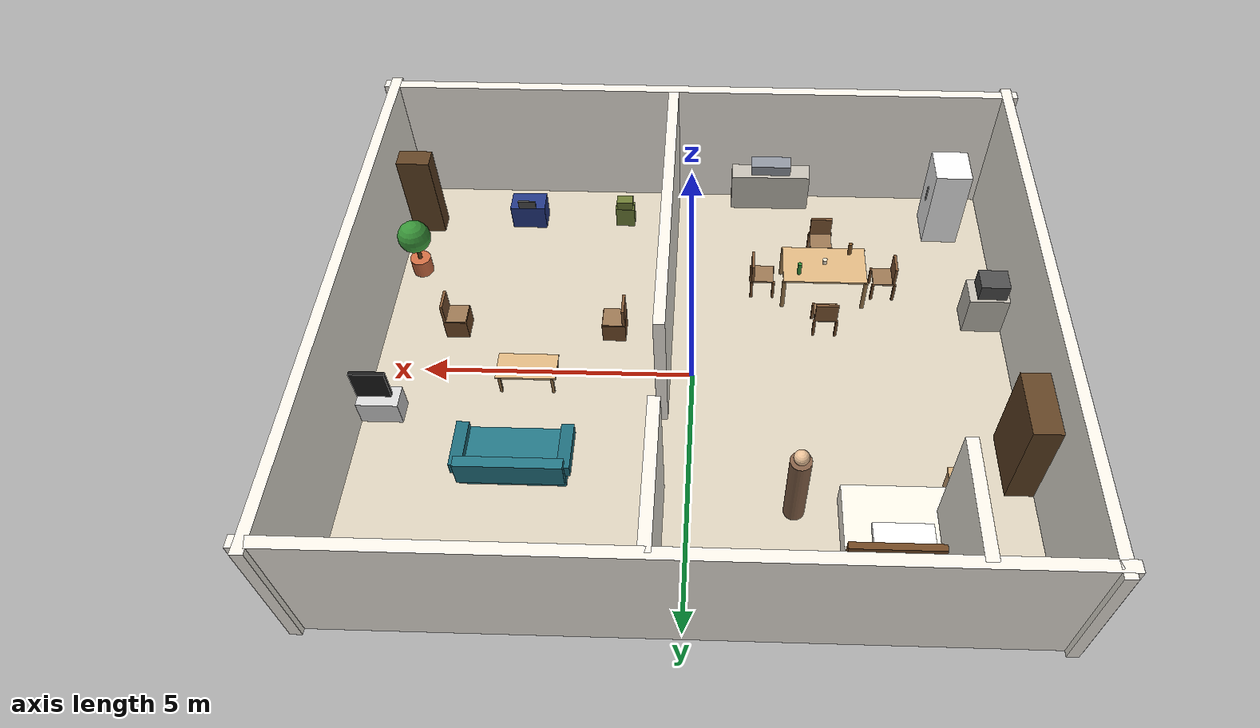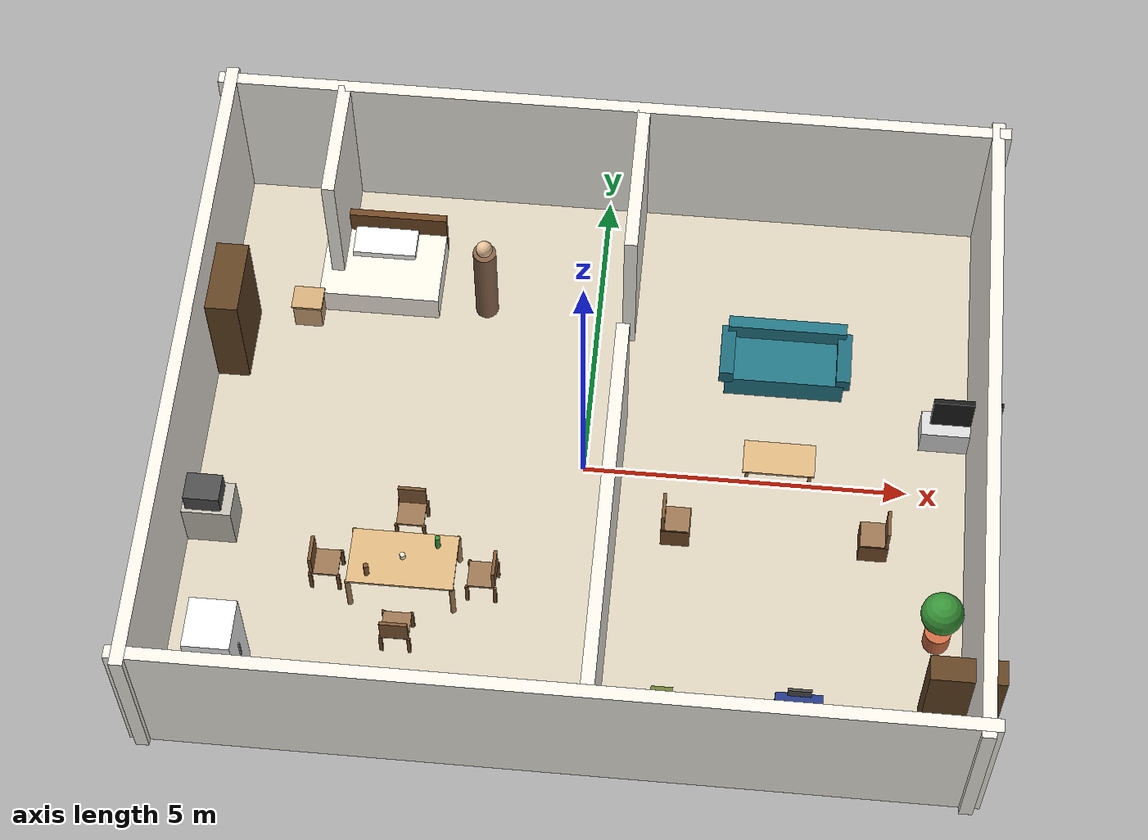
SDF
<?xml version="1.0" ?>
<sdf version="1.6">
<world name="default">

  <plugin filename="libignition-gazebo-physics-system.so"       name="ignition::gazebo::systems::Physics"/>
  <plugin filename="libignition-gazebo-user-commands-system.so" name="ignition::gazebo::systems::UserCommands"/>
  <plugin filename="libignition-gazebo-scene-broadcaster-system.so" name="ignition::gazebo::systems::SceneBroadcaster"/>
  <plugin filename="libignition-gazebo-imu-system.so"           name="ignition::gazebo::systems::Imu"/>
  <plugin filename="libignition-gazebo-sensors-system.so"       name="ignition::gazebo::systems::Sensors">
    <render_engine>ogre2</render_engine>
  </plugin>

  <physics name="default_physics" default="true" type="ode">
    <max_step_size>0.001</max_step_size>
    <real_time_factor>1</real_time_factor>
    <real_time_update_rate>500</real_time_update_rate>
    <gravity>0 0 -9.81</gravity>
  </physics>

  <light name="sun" type="directional">
    <cast_shadows>false</cast_shadows>
    <pose>0 0 12 0 -0.4 0.6</pose>
    <diffuse>1.0 0.98 0.94 1</diffuse>
    <specular>0.3 0.3 0.3 1</specular>
    <direction>-0.4 0.2 -0.9</direction>
  </light>
  <light name="fill" type="directional">
    <cast_shadows>false</cast_shadows>
    <pose>0 0 8 0 0 0</pose>
    <diffuse>0.50 0.52 0.56 1</diffuse>
    <specular>0.02 0.02 0.02 1</specular>
    <direction>0 0 -1</direction>
  </light>

  <!-- ══ FLOOR ══ -->
  <model name="floor"><static>true</static><pose>0 0 0.01 0 0 0</pose>
    <link name="l"><collision name="c"><geometry><box><size>12.0 10.0 0.02</size></box></geometry></collision>
      <visual name="v"><geometry><box><size>12.0 10.0 0.02</size></box></geometry>
        <material><ambient>0.78 0.74 0.66 1</ambient><diffuse>0.85 0.81 0.73 1</diffuse></material></visual></link></model>

  <!-- ══ OUTER WALLS ══ -->
  <model name="wall_N"><static>true</static><pose>0 5.0 1.35 0 0 0</pose>
    <link name="l"><collision name="c"><geometry><box><size>12.4 0.20 2.70</size></box></geometry></collision>
      <visual name="v"><geometry><box><size>12.4 0.20 2.70</size></box></geometry>
        <material><ambient>0.92 0.90 0.86 1</ambient><diffuse>0.96 0.94 0.90 1</diffuse></material></visual></link></model>
  <model name="wall_S"><static>true</static><pose>0 -5.0 1.35 0 0 0</pose>
    <link name="l"><collision name="c"><geometry><box><size>12.4 0.20 2.70</size></box></geometry></collision>
      <visual name="v"><geometry><box><size>12.4 0.20 2.70</size></box></geometry>
        <material><ambient>0.92 0.90 0.86 1</ambient><diffuse>0.96 0.94 0.90 1</diffuse></material></visual></link></model>
  <model name="wall_E"><static>true</static><pose>6.0 0 1.35 0 0 0</pose>
    <link name="l"><collision name="c"><geometry><box><size>0.20 10.4 2.70</size></box></geometry></collision>
      <visual name="v"><geometry><box><size>0.20 10.4 2.70</size></box></geometry>
        <material><ambient>0.92 0.90 0.86 1</ambient><diffuse>0.96 0.94 0.90 1</diffuse></material></visual></link></model>
  <model name="wall_W"><static>true</static><pose>-6.0 0 1.35 0 0 0</pose>
    <link name="l"><collision name="c"><geometry><box><size>0.20 10.4 2.70</size></box></geometry></collision>
      <visual name="v"><geometry><box><size>0.20 10.4 2.70</size></box></geometry>
        <material><ambient>0.92 0.90 0.86 1</ambient><diffuse>0.96 0.94 0.90 1</diffuse></material></visual></link></model>

  <!-- ══ INTERNAL DIVIDING WALL x=0.5  (doorway y=1.0–2.4) ══ -->
  <model name="div_N"><static>true</static><pose>0.5 3.70 1.35 0 0 0</pose>
    <link name="l"><collision name="c"><geometry><box><size>0.20 2.60 2.70</size></box></geometry></collision>
      <visual name="v"><geometry><box><size>0.20 2.60 2.70</size></box></geometry>
        <material><ambient>0.92 0.90 0.86 1</ambient><diffuse>0.96 0.94 0.90 1</diffuse></material></visual></link></model>
  <model name="div_S"><static>true</static><pose>0.5 -2.0 1.35 0 0 0</pose>
    <link name="l"><collision name="c"><geometry><box><size>0.20 6.00 2.70</size></box></geometry></collision>
      <visual name="v"><geometry><box><size>0.20 6.00 2.70</size></box></geometry>
        <material><ambient>0.92 0.90 0.86 1</ambient><diffuse>0.96 0.94 0.90 1</diffuse></material></visual></link></model>

  <model name="closet_wall"><static>true</static><pose>-4.2 4.0 1.35 0 0 0</pose>
    <link name="l"><collision name="c"><geometry><box><size>0.20 2.00 2.70</size></box></geometry></collision>
      <visual name="v"><geometry><box><size>0.20 2.00 2.70</size></box></geometry>
        <material><ambient>0.92 0.90 0.86 1</ambient><diffuse>0.96 0.94 0.90 1</diffuse></material></visual></link></model>

  <!-- ══════════════════════════════════════════════════════════════
       BEDROOM  (left zone, y > 0)
       Classes: bed, person
  ══════════════════════════════════════════════════════════════════ -->

  <!-- BED — class: bed -->
  <model name="bed_mat"><static>true</static><pose>-3.5 3.2 0.25 0 0 0</pose>
    <link name="l"><collision name="c"><geometry><box><size>1.90 1.30 0.50</size></box></geometry></collision>
      <visual name="v"><geometry><box><size>1.90 1.30 0.50</size></box></geometry>
        <material><ambient>0.94 0.91 0.86 1</ambient><diffuse>0.98 0.95 0.90 1</diffuse></material></visual></link></model>
  <model name="bed_head"><static>true</static><pose>-3.5 3.87 0.45 0 0 0</pose>
    <link name="l"><collision name="c"><geometry><box><size>1.90 0.12 0.90</size></box></geometry></collision>
      <visual name="v"><geometry><box><size>1.90 0.12 0.90</size></box></geometry>
        <material><ambient>0.35 0.22 0.10 1</ambient><diffuse>0.44 0.28 0.14 1</diffuse></material></visual></link></model>
  <model name="bed_pillow"><static>true</static><pose>-3.5 3.55 0.545 0 0 0</pose>
    <link name="l"><collision name="c"><geometry><box><size>1.00 0.50 0.14</size></box></geometry></collision>
      <visual name="v"><geometry><box><size>1.00 0.50 0.14</size></box></geometry>
        <material><ambient>0.97 0.96 0.94 1</ambient><diffuse>1.0 0.99 0.97 1</diffuse></material></visual></link></model>

  <!-- WARDROBE — flush west wall — void behind creates dead zone -->
  <model name="wardrobe"><static>true</static><pose>-5.70 1.8 0.96 0 0 0</pose>
    <link name="l"><collision name="c"><geometry><box><size>0.60 1.20 1.92</size></box></geometry></collision>
      <visual name="v"><geometry><box><size>0.60 1.20 1.92</size></box></geometry>
        <material><ambient>0.30 0.20 0.10 1</ambient><diffuse>0.38 0.26 0.14 1</diffuse></material></visual></link></model>

  <!-- PERSON — class: person -->
  <model name="person_body"><static>true</static><pose>-1.8 2.8 0.80 0 0 0</pose>
    <link name="l"><collision name="c"><geometry><cylinder><radius>0.18</radius><length>1.60</length></cylinder></geometry></collision>
      <visual name="v"><geometry><cylinder><radius>0.18</radius><length>1.60</length></cylinder></geometry>
        <material><ambient>0.42 0.30 0.22 1</ambient><diffuse>0.52 0.38 0.28 1</diffuse></material></visual></link></model>
  <model name="person_head"><static>true</static><pose>-1.8 2.8 1.70 0 0 0</pose>
    <link name="l"><collision name="c"><geometry><sphere><radius>0.13</radius></sphere></geometry></collision>
      <visual name="v"><geometry><sphere><radius>0.13</radius></sphere></geometry>
        <material><ambient>0.86 0.68 0.52 1</ambient><diffuse>0.92 0.76 0.60 1</diffuse></material></visual></link></model>

  <!-- NIGHTSTAND -->
  <model name="nstand_body"><static>true</static><pose>-4.6 2.4 0.26 0 0 0</pose>
    <link name="l"><collision name="c"><geometry><box><size>0.44 0.36 0.52</size></box></geometry></collision>
      <visual name="v"><geometry><box><size>0.44 0.36 0.52</size></box></geometry>
        <material><ambient>0.72 0.56 0.38 1</ambient><diffuse>0.80 0.64 0.46 1</diffuse></material></visual></link></model>
  <model name="nstand_top"><static>true</static><pose>-4.6 2.4 0.54 0 0 0</pose>
    <link name="l"><collision name="c"><geometry><box><size>0.48 0.40 0.04</size></box></geometry></collision>
      <visual name="v"><geometry><box><size>0.48 0.40 0.04</size></box></geometry>
        <material><ambient>0.75 0.60 0.40 1</ambient><diffuse>0.82 0.67 0.47 1</diffuse></material></visual></link></model>

  <!-- DINING TABLE — class: dining table -->
  <model name="dtable_top"><static>true</static><pose>-2.5 -2.2 0.73 0 0 0</pose>
    <link name="l"><collision name="c"><geometry><box><size>1.60 0.90 0.04</size></box></geometry></collision>
      <visual name="v"><geometry><box><size>1.60 0.90 0.04</size></box></geometry>
        <material><ambient>0.78 0.63 0.42 1</ambient><diffuse>0.86 0.71 0.50 1</diffuse></material></visual></link></model>
  <model name="dtable_leg_ne"><static>true</static><pose>-1.72 -1.77 0.365 0 0 0</pose>
    <link name="l"><collision name="c"><geometry><cylinder><radius>0.04</radius><length>0.73</length></cylinder></geometry></collision>
      <visual name="v"><geometry><cylinder><radius>0.04</radius><length>0.73</length></cylinder></geometry>
        <material><ambient>0.55 0.42 0.26 1</ambient><diffuse>0.62 0.48 0.30 1</diffuse></material></visual></link></model>
  <model name="dtable_leg_nw"><static>true</static><pose>-3.28 -1.77 0.365 0 0 0</pose>
    <link name="l"><collision name="c"><geometry><cylinder><radius>0.04</radius><length>0.73</length></cylinder></geometry></collision>
      <visual name="v"><geometry><cylinder><radius>0.04</radius><length>0.73</length></cylinder></geometry>
        <material><ambient>0.55 0.42 0.26 1</ambient><diffuse>0.62 0.48 0.30 1</diffuse></material></visual></link></model>
  <model name="dtable_leg_se"><static>true</static><pose>-1.72 -2.63 0.365 0 0 0</pose>
    <link name="l"><collision name="c"><geometry><cylinder><radius>0.04</radius><length>0.73</length></cylinder></geometry></collision>
      <visual name="v"><geometry><cylinder><radius>0.04</radius><length>0.73</length></cylinder></geometry>
        <material><ambient>0.55 0.42 0.26 1</ambient><diffuse>0.62 0.48 0.30 1</diffuse></material></visual></link></model>
  <model name="dtable_leg_sw"><static>true</static><pose>-3.28 -2.63 0.365 0 0 0</pose>
    <link name="l"><collision name="c"><geometry><cylinder><radius>0.04</radius><length>0.73</length></cylinder></geometry></collision>
      <visual name="v"><geometry><cylinder><radius>0.04</radius><length>0.73</length></cylinder></geometry>
        <material><ambient>0.55 0.42 0.26 1</ambient><diffuse>0.62 0.48 0.30 1</diffuse></material></visual></link></model>

  <!-- CHAIR N (north of table, faces south) — class: chair -->
  <model name="chair_n_seat"><static>true</static><pose>-2.5 -1.25 0.44 0 0 0</pose>
    <link name="l"><collision name="c"><geometry><box><size>0.42 0.42 0.04</size></box></geometry></collision>
      <visual name="v"><geometry><box><size>0.42 0.42 0.04</size></box></geometry>
        <material><ambient>0.50 0.38 0.26 1</ambient><diffuse>0.60 0.46 0.32 1</diffuse></material></visual></link></model>
  <model name="chair_n_back"><static>true</static><pose>-2.5 -1.06 0.65 0 0 0</pose>
    <link name="l"><collision name="c"><geometry><box><size>0.42 0.05 0.42</size></box></geometry></collision>
      <visual name="v"><geometry><box><size>0.42 0.05 0.42</size></box></geometry>
        <material><ambient>0.40 0.26 0.14 1</ambient><diffuse>0.50 0.34 0.20 1</diffuse></material></visual></link></model>
  <model name="chair_n_leg_ne"><static>true</static><pose>-2.29 -1.04 0.22 0 0 0</pose>
    <link name="l"><collision name="c"><geometry><box><size>0.05 0.05 0.44</size></box></geometry></collision>
      <visual name="v"><geometry><box><size>0.05 0.05 0.44</size></box></geometry>
        <material><ambient>0.38 0.24 0.12 1</ambient><diffuse>0.46 0.30 0.16 1</diffuse></material></visual></link></model>
  <model name="chair_n_leg_nw"><static>true</static><pose>-2.71 -1.04 0.22 0 0 0</pose>
    <link name="l"><collision name="c"><geometry><box><size>0.05 0.05 0.44</size></box></geometry></collision>
      <visual name="v"><geometry><box><size>0.05 0.05 0.44</size></box></geometry>
        <material><ambient>0.38 0.24 0.12 1</ambient><diffuse>0.46 0.30 0.16 1</diffuse></material></visual></link></model>
  <model name="chair_n_leg_se"><static>true</static><pose>-2.29 -1.46 0.22 0 0 0</pose>
    <link name="l"><collision name="c"><geometry><box><size>0.05 0.05 0.44</size></box></geometry></collision>
      <visual name="v"><geometry><box><size>0.05 0.05 0.44</size></box></geometry>
        <material><ambient>0.38 0.24 0.12 1</ambient><diffuse>0.46 0.30 0.16 1</diffuse></material></visual></link></model>
  <model name="chair_n_leg_sw"><static>true</static><pose>-2.71 -1.46 0.22 0 0 0</pose>
    <link name="l"><collision name="c"><geometry><box><size>0.05 0.05 0.44</size></box></geometry></collision>
      <visual name="v"><geometry><box><size>0.05 0.05 0.44</size></box></geometry>
        <material><ambient>0.38 0.24 0.12 1</ambient><diffuse>0.46 0.30 0.16 1</diffuse></material></visual></link></model>

  <!-- CHAIR S (south of table, faces north) -->
  <model name="chair_s_seat"><static>true</static><pose>-2.5 -3.15 0.44 0 0 0</pose>
    <link name="l"><collision name="c"><geometry><box><size>0.42 0.42 0.04</size></box></geometry></collision>
      <visual name="v"><geometry><box><size>0.42 0.42 0.04</size></box></geometry>
        <material><ambient>0.50 0.38 0.26 1</ambient><diffuse>0.60 0.46 0.32 1</diffuse></material></visual></link></model>
  <model name="chair_s_back"><static>true</static><pose>-2.5 -3.34 0.65 0 0 0</pose>
    <link name="l"><collision name="c"><geometry><box><size>0.42 0.05 0.42</size></box></geometry></collision>
      <visual name="v"><geometry><box><size>0.42 0.05 0.42</size></box></geometry>
        <material><ambient>0.40 0.26 0.14 1</ambient><diffuse>0.50 0.34 0.20 1</diffuse></material></visual></link></model>
  <model name="chair_s_leg_ne"><static>true</static><pose>-2.29 -2.94 0.22 0 0 0</pose>
    <link name="l"><collision name="c"><geometry><box><size>0.05 0.05 0.44</size></box></geometry></collision>
      <visual name="v"><geometry><box><size>0.05 0.05 0.44</size></box></geometry>
        <material><ambient>0.38 0.24 0.12 1</ambient><diffuse>0.46 0.30 0.16 1</diffuse></material></visual></link></model>
  <model name="chair_s_leg_nw"><static>true</static><pose>-2.71 -2.94 0.22 0 0 0</pose>
    <link name="l"><collision name="c"><geometry><box><size>0.05 0.05 0.44</size></box></geometry></collision>
      <visual name="v"><geometry><box><size>0.05 0.05 0.44</size></box></geometry>
        <material><ambient>0.38 0.24 0.12 1</ambient><diffuse>0.46 0.30 0.16 1</diffuse></material></visual></link></model>
  <model name="chair_s_leg_se"><static>true</static><pose>-2.29 -3.36 0.22 0 0 0</pose>
    <link name="l"><collision name="c"><geometry><box><size>0.05 0.05 0.44</size></box></geometry></collision>
      <visual name="v"><geometry><box><size>0.05 0.05 0.44</size></box></geometry>
        <material><ambient>0.38 0.24 0.12 1</ambient><diffuse>0.46 0.30 0.16 1</diffuse></material></visual></link></model>
  <model name="chair_s_leg_sw"><static>true</static><pose>-2.71 -3.36 0.22 0 0 0</pose>
    <link name="l"><collision name="c"><geometry><box><size>0.05 0.05 0.44</size></box></geometry></collision>
      <visual name="v"><geometry><box><size>0.05 0.05 0.44</size></box></geometry>
        <material><ambient>0.38 0.24 0.12 1</ambient><diffuse>0.46 0.30 0.16 1</diffuse></material></visual></link></model>

  <!-- CHAIR E (east of table, faces west) -->
  <model name="chair_e_seat"><static>true</static><pose>-1.32 -2.20 0.44 0 0 0</pose>
    <link name="l"><collision name="c"><geometry><box><size>0.42 0.42 0.04</size></box></geometry></collision>
      <visual name="v"><geometry><box><size>0.42 0.42 0.04</size></box></geometry>
        <material><ambient>0.50 0.38 0.26 1</ambient><diffuse>0.60 0.46 0.32 1</diffuse></material></visual></link></model>
  <model name="chair_e_back"><static>true</static><pose>-1.13 -2.20 0.65 0 0 0</pose>
    <link name="l"><collision name="c"><geometry><box><size>0.05 0.42 0.42</size></box></geometry></collision>
      <visual name="v"><geometry><box><size>0.05 0.42 0.42</size></box></geometry>
        <material><ambient>0.40 0.26 0.14 1</ambient><diffuse>0.50 0.34 0.20 1</diffuse></material></visual></link></model>
  <model name="chair_e_leg_ne"><static>true</static><pose>-1.11 -1.99 0.22 0 0 0</pose>
    <link name="l"><collision name="c"><geometry><box><size>0.05 0.05 0.44</size></box></geometry></collision>
      <visual name="v"><geometry><box><size>0.05 0.05 0.44</size></box></geometry>
        <material><ambient>0.38 0.24 0.12 1</ambient><diffuse>0.46 0.30 0.16 1</diffuse></material></visual></link></model>
  <model name="chair_e_leg_nw"><static>true</static><pose>-1.53 -1.99 0.22 0 0 0</pose>
    <link name="l"><collision name="c"><geometry><box><size>0.05 0.05 0.44</size></box></geometry></collision>
      <visual name="v"><geometry><box><size>0.05 0.05 0.44</size></box></geometry>
        <material><ambient>0.38 0.24 0.12 1</ambient><diffuse>0.46 0.30 0.16 1</diffuse></material></visual></link></model>
  <model name="chair_e_leg_se"><static>true</static><pose>-1.11 -2.41 0.22 0 0 0</pose>
    <link name="l"><collision name="c"><geometry><box><size>0.05 0.05 0.44</size></box></geometry></collision>
      <visual name="v"><geometry><box><size>0.05 0.05 0.44</size></box></geometry>
        <material><ambient>0.38 0.24 0.12 1</ambient><diffuse>0.46 0.30 0.16 1</diffuse></material></visual></link></model>
  <model name="chair_e_leg_sw"><static>true</static><pose>-1.53 -2.41 0.22 0 0 0</pose>
    <link name="l"><collision name="c"><geometry><box><size>0.05 0.05 0.44</size></box></geometry></collision>
      <visual name="v"><geometry><box><size>0.05 0.05 0.44</size></box></geometry>
        <material><ambient>0.38 0.24 0.12 1</ambient><diffuse>0.46 0.30 0.16 1</diffuse></material></visual></link></model>

  <!-- CHAIR W (west of table, faces east) -->
  <model name="chair_w_seat"><static>true</static><pose>-3.68 -2.20 0.44 0 0 0</pose>
    <link name="l"><collision name="c"><geometry><box><size>0.42 0.42 0.04</size></box></geometry></collision>
      <visual name="v"><geometry><box><size>0.42 0.42 0.04</size></box></geometry>
        <material><ambient>0.50 0.38 0.26 1</ambient><diffuse>0.60 0.46 0.32 1</diffuse></material></visual></link></model>
  <model name="chair_w_back"><static>true</static><pose>-3.87 -2.20 0.65 0 0 0</pose>
    <link name="l"><collision name="c"><geometry><box><size>0.05 0.42 0.42</size></box></geometry></collision>
      <visual name="v"><geometry><box><size>0.05 0.42 0.42</size></box></geometry>
        <material><ambient>0.40 0.26 0.14 1</ambient><diffuse>0.50 0.34 0.20 1</diffuse></material></visual></link></model>
  <model name="chair_w_leg_ne"><static>true</static><pose>-3.47 -1.99 0.22 0 0 0</pose>
    <link name="l"><collision name="c"><geometry><box><size>0.05 0.05 0.44</size></box></geometry></collision>
      <visual name="v"><geometry><box><size>0.05 0.05 0.44</size></box></geometry>
        <material><ambient>0.38 0.24 0.12 1</ambient><diffuse>0.46 0.30 0.16 1</diffuse></material></visual></link></model>
  <model name="chair_w_leg_nw"><static>true</static><pose>-3.89 -1.99 0.22 0 0 0</pose>
    <link name="l"><collision name="c"><geometry><box><size>0.05 0.05 0.44</size></box></geometry></collision>
      <visual name="v"><geometry><box><size>0.05 0.05 0.44</size></box></geometry>
        <material><ambient>0.38 0.24 0.12 1</ambient><diffuse>0.46 0.30 0.16 1</diffuse></material></visual></link></model>
  <model name="chair_w_leg_se"><static>true</static><pose>-3.47 -2.41 0.22 0 0 0</pose>
    <link name="l"><collision name="c"><geometry><box><size>0.05 0.05 0.44</size></box></geometry></collision>
      <visual name="v"><geometry><box><size>0.05 0.05 0.44</size></box></geometry>
        <material><ambient>0.38 0.24 0.12 1</ambient><diffuse>0.46 0.30 0.16 1</diffuse></material></visual></link></model>
  <model name="chair_w_leg_sw"><static>true</static><pose>-3.89 -2.41 0.22 0 0 0</pose>
    <link name="l"><collision name="c"><geometry><box><size>0.05 0.05 0.44</size></box></geometry></collision>
      <visual name="v"><geometry><box><size>0.05 0.05 0.44</size></box></geometry>
        <material><ambient>0.38 0.24 0.12 1</ambient><diffuse>0.46 0.30 0.16 1</diffuse></material></visual></link></model>

  <!-- REFRIGERATOR — class: refrigerator -->
  <model name="fridge"><static>true</static><pose>-5.0 -4.0 0.88 0 0 0</pose>
    <link name="l"><collision name="c"><geometry><box><size>0.70 0.78 1.76</size></box></geometry></collision>
      <visual name="v"><geometry><box><size>0.70 0.78 1.76</size></box></geometry>
        <material><ambient>0.90 0.90 0.90 1</ambient><diffuse>0.96 0.96 0.96 1</diffuse></material></visual></link></model>
  <!-- fridge handle -->
  <model name="fridge_handle"><static>true</static><pose>-4.65 -4.0 1.00 0 0 0</pose>
    <link name="l"><collision name="c"><geometry><box><size>0.04 0.04 0.35</size></box></geometry></collision>
      <visual name="v"><geometry><box><size>0.04 0.04 0.35</size></box></geometry>
        <material><ambient>0.60 0.60 0.60 1</ambient><diffuse>0.70 0.70 0.70 1</diffuse></material></visual></link></model>

  <!-- KITCHEN COUNTER + MICROWAVE — class: microwave -->
  <model name="kc_counter"><static>true</static><pose>-5.57 -1.5 0.44 0 0 0</pose>
    <link name="l"><collision name="c"><geometry><box><size>0.84 0.55 0.88</size></box></geometry></collision>
      <visual name="v"><geometry><box><size>0.84 0.55 0.88</size></box></geometry>
        <material><ambient>0.68 0.66 0.63 1</ambient><diffuse>0.76 0.74 0.70 1</diffuse></material></visual></link></model>
  <model name="microwave"><static>true</static><pose>-5.57 -1.5 1.045 0 0 0</pose>
    <link name="l"><collision name="c"><geometry><box><size>0.54 0.44 0.33</size></box></geometry></collision>
      <visual name="v"><geometry><box><size>0.54 0.44 0.33</size></box></geometry>
        <material><ambient>0.22 0.22 0.22 1</ambient><diffuse>0.30 0.30 0.30 1</diffuse></material></visual></link></model>

  <!-- SINK COUNTER flush south wall -->
  <model name="sink_counter"><static>true</static><pose>-1.5 -4.72 0.44 0 0 0</pose>
    <link name="l"><collision name="c"><geometry><box><size>1.60 0.44 0.88</size></box></geometry></collision>
      <visual name="v"><geometry><box><size>1.60 0.44 0.88</size></box></geometry>
        <material><ambient>0.68 0.66 0.63 1</ambient><diffuse>0.76 0.74 0.70 1</diffuse></material></visual></link></model>
  <model name="sink_basin"><static>true</static><pose>-1.5 -4.75 0.99 0 0 0</pose>
    <link name="l"><collision name="c"><geometry><box><size>0.80 0.35 0.22</size></box></geometry></collision>
      <visual name="v"><geometry><box><size>0.80 0.35 0.22</size></box></geometry>
        <material><ambient>0.48 0.50 0.54 1</ambient><diffuse>0.56 0.58 0.62 1</diffuse></material></visual></link></model>

  <!-- BOTTLES — class: bottle -->
  <model name="bottle_1"><static>true</static><pose>-2.0 -1.95 0.895 0 0 0</pose>
    <link name="l"><collision name="c"><geometry><cylinder><radius>0.038</radius><length>0.27</length></cylinder></geometry></collision>
      <visual name="v"><geometry><cylinder><radius>0.038</radius><length>0.27</length></cylinder></geometry>
        <material><ambient>0.14 0.46 0.16 1</ambient><diffuse>0.20 0.56 0.22 1</diffuse></material></visual></link></model>
  <model name="bottle_2"><static>true</static><pose>-3.0 -2.50 0.895 0 0 0</pose>
    <link name="l"><collision name="c"><geometry><cylinder><radius>0.038</radius><length>0.27</length></cylinder></geometry></collision>
      <visual name="v"><geometry><cylinder><radius>0.038</radius><length>0.27</length></cylinder></geometry>
        <material><ambient>0.40 0.26 0.10 1</ambient><diffuse>0.50 0.34 0.16 1</diffuse></material></visual></link></model>

  <!-- CUP — class: cup -->
  <model name="cup_k"><static>true</static><pose>-2.5 -2.20 0.845 0 0 0</pose>
    <link name="l"><collision name="c"><geometry><cylinder><radius>0.042</radius><length>0.10</length></cylinder></geometry></collision>
      <visual name="v"><geometry><cylinder><radius>0.042</radius><length>0.10</length></cylinder></geometry>
        <material><ambient>0.90 0.84 0.74 1</ambient><diffuse>0.96 0.90 0.80 1</diffuse></material></visual></link></model>

  <!-- SOFA — class: couch -->
  <model name="sofa_seat"><static>true</static><pose>3.0 2.0 0.23 0 0 0</pose>
    <link name="l"><collision name="c"><geometry><box><size>1.85 0.88 0.46</size></box></geometry></collision>
      <visual name="v"><geometry><box><size>1.85 0.88 0.46</size></box></geometry>
        <material><ambient>0.10 0.36 0.40 1</ambient><diffuse>0.14 0.46 0.52 1</diffuse></material></visual></link></model>
  <model name="sofa_back"><static>true</static><pose>3.0 2.44 0.49 0 0 0</pose>
    <link name="l"><collision name="c"><geometry><box><size>1.85 0.20 0.52</size></box></geometry></collision>
      <visual name="v"><geometry><box><size>1.85 0.20 0.52</size></box></geometry>
        <material><ambient>0.10 0.36 0.40 1</ambient><diffuse>0.14 0.46 0.52 1</diffuse></material></visual></link></model>
  <model name="sofa_arm_l"><static>true</static><pose>2.09 2.0 0.49 0 0 0</pose>
    <link name="l"><collision name="c"><geometry><box><size>0.22 0.88 0.26</size></box></geometry></collision>
      <visual name="v"><geometry><box><size>0.22 0.88 0.26</size></box></geometry>
        <material><ambient>0.08 0.32 0.36 1</ambient><diffuse>0.12 0.42 0.48 1</diffuse></material></visual></link></model>
  <model name="sofa_arm_r"><static>true</static><pose>3.91 2.0 0.49 0 0 0</pose>
    <link name="l"><collision name="c"><geometry><box><size>0.22 0.88 0.26</size></box></geometry></collision>
      <visual name="v"><geometry><box><size>0.22 0.88 0.26</size></box></geometry>
        <material><ambient>0.08 0.32 0.36 1</ambient><diffuse>0.12 0.42 0.48 1</diffuse></material></visual></link></model>

  <!-- TV + STAND — class: tv -->
  <model name="tv_stand"><static>true</static><pose>5.70 1.0 0.26 0 0 0</pose>
    <link name="l"><collision name="c"><geometry><box><size>1.10 0.42 0.52</size></box></geometry></collision>
      <visual name="v"><geometry><box><size>1.10 0.42 0.52</size></box></geometry>
        <material><ambient>0.76 0.76 0.76 1</ambient><diffuse>0.84 0.84 0.84 1</diffuse></material></visual></link></model>
  <model name="tv_screen"><static>true</static><pose>5.80 1.0 0.875 0 0 0</pose>
    <link name="l"><collision name="c"><geometry><box><size>1.05 0.08 0.62</size></box></geometry></collision>
      <visual name="v"><geometry><box><size>1.05 0.08 0.62</size></box></geometry>
        <material><ambient>0.06 0.06 0.06 1</ambient><diffuse>0.10 0.10 0.10 1</diffuse></material></visual></link></model>

  <!-- COFFEE TABLE -->
  <model name="ctable_top"><static>true</static><pose>3.0 0.2 0.43 0 0 0</pose>
    <link name="l"><collision name="c"><geometry><box><size>1.10 0.56 0.04</size></box></geometry></collision>
      <visual name="v"><geometry><box><size>1.10 0.56 0.04</size></box></geometry>
        <material><ambient>0.78 0.63 0.42 1</ambient><diffuse>0.86 0.71 0.50 1</diffuse></material></visual></link></model>
  <model name="ctable_leg_ne"><static>true</static><pose>3.48 0.46 0.215 0 0 0</pose>
    <link name="l"><collision name="c"><geometry><box><size>0.05 0.05 0.43</size></box></geometry></collision>
      <visual name="v"><geometry><box><size>0.05 0.05 0.43</size></box></geometry>
        <material><ambient>0.55 0.42 0.26 1</ambient><diffuse>0.62 0.48 0.30 1</diffuse></material></visual></link></model>
  <model name="ctable_leg_nw"><static>true</static><pose>2.52 0.46 0.215 0 0 0</pose>
    <link name="l"><collision name="c"><geometry><box><size>0.05 0.05 0.43</size></box></geometry></collision>
      <visual name="v"><geometry><box><size>0.05 0.05 0.43</size></box></geometry>
        <material><ambient>0.55 0.42 0.26 1</ambient><diffuse>0.62 0.48 0.30 1</diffuse></material></visual></link></model>
  <model name="ctable_leg_se"><static>true</static><pose>3.48 -0.06 0.215 0 0 0</pose>
    <link name="l"><collision name="c"><geometry><box><size>0.05 0.05 0.43</size></box></geometry></collision>
      <visual name="v"><geometry><box><size>0.05 0.05 0.43</size></box></geometry>
        <material><ambient>0.55 0.42 0.26 1</ambient><diffuse>0.62 0.48 0.30 1</diffuse></material></visual></link></model>
  <model name="ctable_leg_sw"><static>true</static><pose>2.52 -0.06 0.215 0 0 0</pose>
    <link name="l"><collision name="c"><geometry><box><size>0.05 0.05 0.43</size></box></geometry></collision>
      <visual name="v"><geometry><box><size>0.05 0.05 0.43</size></box></geometry>
        <material><ambient>0.55 0.42 0.26 1</ambient><diffuse>0.62 0.48 0.30 1</diffuse></material></visual></link></model>

  <!-- LIVING ROOM CHAIR A (faces east) — class: chair -->
  <model name="chair_la_seat"><static>true</static><pose>1.5 -1.0 0.44 0 0 0</pose>
    <link name="l"><collision name="c"><geometry><box><size>0.42 0.42 0.04</size></box></geometry></collision>
      <visual name="v"><geometry><box><size>0.42 0.42 0.04</size></box></geometry>
        <material><ambient>0.50 0.38 0.26 1</ambient><diffuse>0.60 0.46 0.32 1</diffuse></material></visual></link></model>
  <model name="chair_la_back"><static>true</static><pose>1.31 -1.0 0.65 0 0 0</pose>
    <link name="l"><collision name="c"><geometry><box><size>0.05 0.42 0.42</size></box></geometry></collision>
      <visual name="v"><geometry><box><size>0.05 0.42 0.42</size></box></geometry>
        <material><ambient>0.40 0.26 0.14 1</ambient><diffuse>0.50 0.34 0.20 1</diffuse></material></visual></link></model>
  <model name="chair_la_legs"><static>true</static><pose>1.5 -1.0 0.22 0 0 0</pose>
    <link name="l"><collision name="c"><geometry><box><size>0.44 0.44 0.44</size></box></geometry></collision>
      <visual name="v"><geometry><box><size>0.44 0.44 0.44</size></box></geometry>
        <material><ambient>0.38 0.24 0.12 1</ambient><diffuse>0.46 0.30 0.16 1</diffuse></material></visual></link></model>

  <!-- LIVING ROOM CHAIR B (faces west) — class: chair -->
  <model name="chair_lb_seat"><static>true</static><pose>4.5 -1.0 0.44 0 0 0</pose>
    <link name="l"><collision name="c"><geometry><box><size>0.42 0.42 0.04</size></box></geometry></collision>
      <visual name="v"><geometry><box><size>0.42 0.42 0.04</size></box></geometry>
        <material><ambient>0.50 0.38 0.26 1</ambient><diffuse>0.60 0.46 0.32 1</diffuse></material></visual></link></model>
  <model name="chair_lb_back"><static>true</static><pose>4.69 -1.0 0.65 0 0 0</pose>
    <link name="l"><collision name="c"><geometry><box><size>0.05 0.42 0.42</size></box></geometry></collision>
      <visual name="v"><geometry><box><size>0.05 0.42 0.42</size></box></geometry>
        <material><ambient>0.40 0.26 0.14 1</ambient><diffuse>0.50 0.34 0.20 1</diffuse></material></visual></link></model>
  <model name="chair_lb_legs"><static>true</static><pose>4.5 -1.0 0.22 0 0 0</pose>
    <link name="l"><collision name="c"><geometry><box><size>0.44 0.44 0.44</size></box></geometry></collision>
      <visual name="v"><geometry><box><size>0.44 0.44 0.44</size></box></geometry>
        <material><ambient>0.38 0.24 0.12 1</ambient><diffuse>0.46 0.30 0.16 1</diffuse></material></visual></link></model>

  <!-- POTTED PLANT — class: potted plant -->
  <model name="plant_pot"><static>true</static><pose>5.5 -2.5 0.19 0 0 0</pose>
    <link name="l"><collision name="c"><geometry><cylinder><radius>0.20</radius><length>0.38</length></cylinder></geometry></collision>
      <visual name="v"><geometry><cylinder><radius>0.20</radius><length>0.38</length></cylinder></geometry>
        <material><ambient>0.70 0.34 0.20 1</ambient><diffuse>0.80 0.42 0.26 1</diffuse></material></visual></link></model>
  <model name="plant_stem"><static>true</static><pose>5.5 -2.5 0.565 0 0 0</pose>
    <link name="l"><collision name="c"><geometry><cylinder><radius>0.04</radius><length>0.55</length></cylinder></geometry></collision>
      <visual name="v"><geometry><cylinder><radius>0.04</radius><length>0.55</length></cylinder></geometry>
        <material><ambient>0.32 0.20 0.08 1</ambient><diffuse>0.40 0.26 0.12 1</diffuse></material></visual></link></model>
  <model name="plant_bush"><static>true</static><pose>5.5 -2.5 0.97 0 0 0</pose>
    <link name="l"><collision name="c"><geometry><sphere><radius>0.32</radius></sphere></geometry></collision>
      <visual name="v"><geometry><sphere><radius>0.32</radius></sphere></geometry>
        <material><ambient>0.16 0.48 0.16 1</ambient><diffuse>0.22 0.58 0.22 1</diffuse></material></visual></link></model>

  <!-- BOOKSHELF flush east wall — class: (obstacle / dead-zone creator) -->
  <model name="bookshelf"><static>true</static><pose>5.81 -3.8 0.925 0 0 0</pose>
    <link name="l"><collision name="c"><geometry><box><size>1.10 0.38 1.85</size></box></geometry></collision>
      <visual name="v"><geometry><box><size>1.10 0.38 1.85</size></box></geometry>
        <material><ambient>0.30 0.20 0.10 1</ambient><diffuse>0.38 0.26 0.14 1</diffuse></material></visual></link></model>
  <model name="bookshelf_shelf"><static>true</static><pose>5.81 -3.8 0.62 0 0 0</pose>
    <link name="l"><collision name="c"><geometry><box><size>1.06 0.34 0.03</size></box></geometry></collision>
      <visual name="v"><geometry><box><size>1.06 0.34 0.03</size></box></geometry>
        <material><ambient>0.55 0.42 0.26 1</ambient><diffuse>0.62 0.48 0.30 1</diffuse></material></visual></link></model>

  <!-- SUITCASE — class: suitcase -->
  <model name="suitcase_body"><static>true</static><pose>3.5 -4.0 0.28 0 0 0</pose>
    <link name="l"><collision name="c"><geometry><box><size>0.70 0.45 0.56</size></box></geometry></collision>
      <visual name="v"><geometry><box><size>0.70 0.45 0.56</size></box></geometry>
        <material><ambient>0.10 0.16 0.40 1</ambient><diffuse>0.14 0.22 0.52 1</diffuse></material></visual></link></model>
  <model name="suitcase_handle"><static>true</static><pose>3.5 -3.80 0.63 0 0 0</pose>
    <link name="l"><collision name="c"><geometry><box><size>0.35 0.04 0.20</size></box></geometry></collision>
      <visual name="v"><geometry><box><size>0.35 0.04 0.20</size></box></geometry>
        <material><ambient>0.22 0.22 0.22 1</ambient><diffuse>0.30 0.30 0.30 1</diffuse></material></visual></link></model>

  <!-- BACKPACK — class: backpack -->
  <model name="backpack_lower"><static>true</static><pose>1.5 -4.0 0.24 0 0 0</pose>
    <link name="l"><collision name="c"><geometry><box><size>0.38 0.24 0.48</size></box></geometry></collision>
      <visual name="v"><geometry><box><size>0.38 0.24 0.48</size></box></geometry>
        <material><ambient>0.36 0.40 0.16 1</ambient><diffuse>0.44 0.50 0.22 1</diffuse></material></visual></link></model>
  <model name="backpack_top"><static>true</static><pose>1.5 -4.0 0.57 0 0 0</pose>
    <link name="l"><collision name="c"><geometry><box><size>0.32 0.22 0.18</size></box></geometry></collision>
      <visual name="v"><geometry><box><size>0.32 0.22 0.18</size></box></geometry>
        <material><ambient>0.34 0.38 0.14 1</ambient><diffuse>0.42 0.48 0.20 1</diffuse></material></visual></link></model>

  <!-- CLOCK on south wall — class: clock -->
  <model name="clock"><static>true</static><pose>3.5 -4.97 1.60 1.5708 0 0</pose>
    <link name="l"><collision name="c"><geometry><cylinder><radius>0.22</radius><length>0.04</length></cylinder></geometry></collision>
      <visual name="v"><geometry><cylinder><radius>0.22</radius><length>0.04</length></cylinder></geometry>
        <material><ambient>0.94 0.94 0.94 1</ambient><diffuse>0.98 0.98 0.98 1</diffuse></material></visual></link></model>
  <model name="clock_rim"><static>true</static><pose>3.5 -4.96 1.60 1.5708 0 0</pose>
    <link name="l"><collision name="c"><geometry><cylinder><radius>0.23</radius><length>0.02</length></cylinder></geometry></collision>
      <visual name="v"><geometry><cylinder><radius>0.23</radius><length>0.02</length></cylinder></geometry>
        <material><ambient>0.12 0.12 0.12 1</ambient><diffuse>0.18 0.18 0.18 1</diffuse></material></visual></link></model>

</world>
</sdf>
